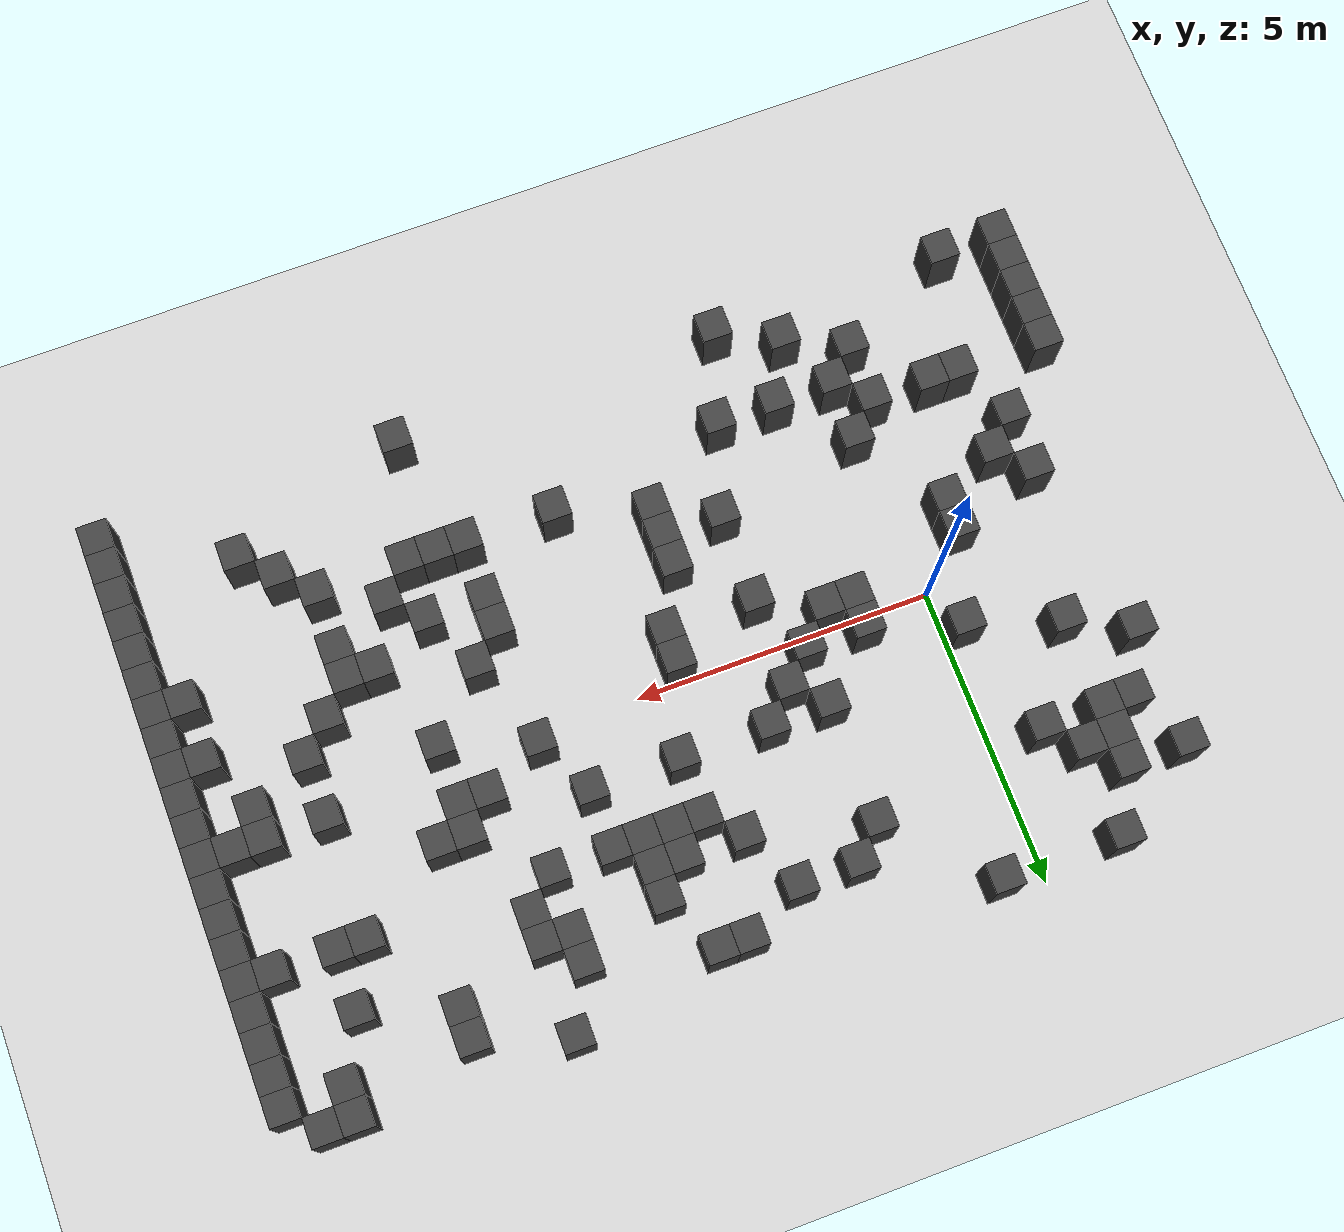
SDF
<sdf version="1.7">
 <world name="map_3891">
  <model name="ground_plane">
   <static>true</static>
   <link name="link">
    <collision name="collision">
     <geometry><plane><normal>0 0 1</normal><size>200 200</size></plane></geometry>
    </collision>
    <visual name="visual">
     <geometry><plane><normal>0 0 1</normal><size>200 200</size></plane></geometry>
     <material><ambient>0.8 0.8 0.8 1</ambient><diffuse>0.8 0.8 0.8 1</diffuse></material>
    </visual>
   </link>
  </model>
  <model name="maze_environment">
   <static>true</static>
   <link name="wall_222">
    <pose>-1.250 4.750 0.500 0 0 0</pose>
    <collision name="col"><geometry><box><size>0.5 0.5 1.0</size></box></geometry></collision>
    <visual name="vis">
     <geometry><box><size>0.5 0.5 1.0</size></box></geometry>
     <material><ambient>0.15 0.15 0.15 1</ambient><diffuse>0.25 0.25 0.25 1</diffuse></material>
    </visual>
   </link>
   <link name="wall_223">
    <pose>0.750 4.750 0.500 0 0 0</pose>
    <collision name="col"><geometry><box><size>0.5 0.5 1.0</size></box></geometry></collision>
    <visual name="vis">
     <geometry><box><size>0.5 0.5 1.0</size></box></geometry>
     <material><ambient>0.15 0.15 0.15 1</ambient><diffuse>0.25 0.25 0.25 1</diffuse></material>
    </visual>
   </link>
   <link name="wall_224">
    <pose>7.750 4.750 0.500 0 0 0</pose>
    <collision name="col"><geometry><box><size>0.5 0.5 1.0</size></box></geometry></collision>
    <visual name="vis">
     <geometry><box><size>0.5 0.5 1.0</size></box></geometry>
     <material><ambient>0.15 0.15 0.15 1</ambient><diffuse>0.25 0.25 0.25 1</diffuse></material>
    </visual>
   </link>
   <link name="wall_225">
    <pose>11.250 4.750 0.500 0 0 0</pose>
    <collision name="col"><geometry><box><size>0.5 0.5 1.0</size></box></geometry></collision>
    <visual name="vis">
     <geometry><box><size>0.5 0.5 1.0</size></box></geometry>
     <material><ambient>0.15 0.15 0.15 1</ambient><diffuse>0.25 0.25 0.25 1</diffuse></material>
    </visual>
   </link>
   <link name="wall_226">
    <pose>11.750 4.750 0.500 0 0 0</pose>
    <collision name="col"><geometry><box><size>0.5 0.5 1.0</size></box></geometry></collision>
    <visual name="vis">
     <geometry><box><size>0.5 0.5 1.0</size></box></geometry>
     <material><ambient>0.15 0.15 0.15 1</ambient><diffuse>0.25 0.25 0.25 1</diffuse></material>
    </visual>
   </link>
   <link name="wall_231">
    <pose>4.750 4.250 0.500 0 0 0</pose>
    <collision name="col"><geometry><box><size>0.5 0.5 1.0</size></box></geometry></collision>
    <visual name="vis">
     <geometry><box><size>0.5 0.5 1.0</size></box></geometry>
     <material><ambient>0.15 0.15 0.15 1</ambient><diffuse>0.25 0.25 0.25 1</diffuse></material>
    </visual>
   </link>
   <link name="wall_232">
    <pose>5.250 4.250 0.500 0 0 0</pose>
    <collision name="col"><geometry><box><size>0.5 0.5 1.0</size></box></geometry></collision>
    <visual name="vis">
     <geometry><box><size>0.5 0.5 1.0</size></box></geometry>
     <material><ambient>0.15 0.15 0.15 1</ambient><diffuse>0.25 0.25 0.25 1</diffuse></material>
    </visual>
   </link>
   <link name="wall_233">
    <pose>9.250 4.250 0.500 0 0 0</pose>
    <collision name="col"><geometry><box><size>0.5 0.5 1.0</size></box></geometry></collision>
    <visual name="vis">
     <geometry><box><size>0.5 0.5 1.0</size></box></geometry>
     <material><ambient>0.15 0.15 0.15 1</ambient><diffuse>0.25 0.25 0.25 1</diffuse></material>
    </visual>
   </link>
   <link name="wall_234">
    <pose>11.250 4.250 0.500 0 0 0</pose>
    <collision name="col"><geometry><box><size>0.5 0.5 1.0</size></box></geometry></collision>
    <visual name="vis">
     <geometry><box><size>0.5 0.5 1.0</size></box></geometry>
     <material><ambient>0.15 0.15 0.15 1</ambient><diffuse>0.25 0.25 0.25 1</diffuse></material>
    </visual>
   </link>
   <link name="wall_235">
    <pose>12.250 4.250 0.500 0 0 0</pose>
    <collision name="col"><geometry><box><size>0.5 0.5 1.0</size></box></geometry></collision>
    <visual name="vis">
     <geometry><box><size>0.5 0.5 1.0</size></box></geometry>
     <material><ambient>0.15 0.15 0.15 1</ambient><diffuse>0.25 0.25 0.25 1</diffuse></material>
    </visual>
   </link>
   <link name="wall_244">
    <pose>-2.750 3.750 0.500 0 0 0</pose>
    <collision name="col"><geometry><box><size>0.5 0.5 1.0</size></box></geometry></collision>
    <visual name="vis">
     <geometry><box><size>0.5 0.5 1.0</size></box></geometry>
     <material><ambient>0.15 0.15 0.15 1</ambient><diffuse>0.25 0.25 0.25 1</diffuse></material>
    </visual>
   </link>
   <link name="wall_245">
    <pose>-1.750 3.750 0.500 0 0 0</pose>
    <collision name="col"><geometry><box><size>0.5 0.5 1.0</size></box></geometry></collision>
    <visual name="vis">
     <geometry><box><size>0.5 0.5 1.0</size></box></geometry>
     <material><ambient>0.15 0.15 0.15 1</ambient><diffuse>0.25 0.25 0.25 1</diffuse></material>
    </visual>
   </link>
   <link name="wall_246">
    <pose>2.750 3.750 0.500 0 0 0</pose>
    <collision name="col"><geometry><box><size>0.5 0.5 1.0</size></box></geometry></collision>
    <visual name="vis">
     <geometry><box><size>0.5 0.5 1.0</size></box></geometry>
     <material><ambient>0.15 0.15 0.15 1</ambient><diffuse>0.25 0.25 0.25 1</diffuse></material>
    </visual>
   </link>
   <link name="wall_247">
    <pose>3.750 3.750 0.500 0 0 0</pose>
    <collision name="col"><geometry><box><size>0.5 0.5 1.0</size></box></geometry></collision>
    <visual name="vis">
     <geometry><box><size>0.5 0.5 1.0</size></box></geometry>
     <material><ambient>0.15 0.15 0.15 1</ambient><diffuse>0.25 0.25 0.25 1</diffuse></material>
    </visual>
   </link>
   <link name="wall_248">
    <pose>7.250 3.750 0.500 0 0 0</pose>
    <collision name="col"><geometry><box><size>0.5 0.5 1.0</size></box></geometry></collision>
    <visual name="vis">
     <geometry><box><size>0.5 0.5 1.0</size></box></geometry>
     <material><ambient>0.15 0.15 0.15 1</ambient><diffuse>0.25 0.25 0.25 1</diffuse></material>
    </visual>
   </link>
   <link name="wall_249">
    <pose>9.250 3.750 0.500 0 0 0</pose>
    <collision name="col"><geometry><box><size>0.5 0.5 1.0</size></box></geometry></collision>
    <visual name="vis">
     <geometry><box><size>0.5 0.5 1.0</size></box></geometry>
     <material><ambient>0.15 0.15 0.15 1</ambient><diffuse>0.25 0.25 0.25 1</diffuse></material>
    </visual>
   </link>
   <link name="wall_250">
    <pose>12.250 3.750 0.500 0 0 0</pose>
    <collision name="col"><geometry><box><size>0.5 0.5 1.0</size></box></geometry></collision>
    <visual name="vis">
     <geometry><box><size>0.5 0.5 1.0</size></box></geometry>
     <material><ambient>0.15 0.15 0.15 1</ambient><diffuse>0.25 0.25 0.25 1</diffuse></material>
    </visual>
   </link>
   <link name="wall_256">
    <pose>-1.750 3.250 0.500 0 0 0</pose>
    <collision name="col"><geometry><box><size>0.5 0.5 1.0</size></box></geometry></collision>
    <visual name="vis">
     <geometry><box><size>0.5 0.5 1.0</size></box></geometry>
     <material><ambient>0.15 0.15 0.15 1</ambient><diffuse>0.25 0.25 0.25 1</diffuse></material>
    </visual>
   </link>
   <link name="wall_257">
    <pose>-1.250 3.250 0.500 0 0 0</pose>
    <collision name="col"><geometry><box><size>0.5 0.5 1.0</size></box></geometry></collision>
    <visual name="vis">
     <geometry><box><size>0.5 0.5 1.0</size></box></geometry>
     <material><ambient>0.15 0.15 0.15 1</ambient><diffuse>0.25 0.25 0.25 1</diffuse></material>
    </visual>
   </link>
   <link name="wall_258">
    <pose>2.250 3.250 0.500 0 0 0</pose>
    <collision name="col"><geometry><box><size>0.5 0.5 1.0</size></box></geometry></collision>
    <visual name="vis">
     <geometry><box><size>0.5 0.5 1.0</size></box></geometry>
     <material><ambient>0.15 0.15 0.15 1</ambient><diffuse>0.25 0.25 0.25 1</diffuse></material>
    </visual>
   </link>
   <link name="wall_259">
    <pose>5.750 3.250 0.500 0 0 0</pose>
    <collision name="col"><geometry><box><size>0.5 0.5 1.0</size></box></geometry></collision>
    <visual name="vis">
     <geometry><box><size>0.5 0.5 1.0</size></box></geometry>
     <material><ambient>0.15 0.15 0.15 1</ambient><diffuse>0.25 0.25 0.25 1</diffuse></material>
    </visual>
   </link>
   <link name="wall_260">
    <pose>7.250 3.250 0.500 0 0 0</pose>
    <collision name="col"><geometry><box><size>0.5 0.5 1.0</size></box></geometry></collision>
    <visual name="vis">
     <geometry><box><size>0.5 0.5 1.0</size></box></geometry>
     <material><ambient>0.15 0.15 0.15 1</ambient><diffuse>0.25 0.25 0.25 1</diffuse></material>
    </visual>
   </link>
   <link name="wall_261">
    <pose>7.750 3.250 0.500 0 0 0</pose>
    <collision name="col"><geometry><box><size>0.5 0.5 1.0</size></box></geometry></collision>
    <visual name="vis">
     <geometry><box><size>0.5 0.5 1.0</size></box></geometry>
     <material><ambient>0.15 0.15 0.15 1</ambient><diffuse>0.25 0.25 0.25 1</diffuse></material>
    </visual>
   </link>
   <link name="wall_262">
    <pose>10.750 3.250 0.500 0 0 0</pose>
    <collision name="col"><geometry><box><size>0.5 0.5 1.0</size></box></geometry></collision>
    <visual name="vis">
     <geometry><box><size>0.5 0.5 1.0</size></box></geometry>
     <material><ambient>0.15 0.15 0.15 1</ambient><diffuse>0.25 0.25 0.25 1</diffuse></material>
    </visual>
   </link>
   <link name="wall_263">
    <pose>12.250 3.250 0.500 0 0 0</pose>
    <collision name="col"><geometry><box><size>0.5 0.5 1.0</size></box></geometry></collision>
    <visual name="vis">
     <geometry><box><size>0.5 0.5 1.0</size></box></geometry>
     <material><ambient>0.15 0.15 0.15 1</ambient><diffuse>0.25 0.25 0.25 1</diffuse></material>
    </visual>
   </link>
   <link name="wall_270">
    <pose>-2.250 2.750 0.500 0 0 0</pose>
    <collision name="col"><geometry><box><size>0.5 0.5 1.0</size></box></geometry></collision>
    <visual name="vis">
     <geometry><box><size>0.5 0.5 1.0</size></box></geometry>
     <material><ambient>0.15 0.15 0.15 1</ambient><diffuse>0.25 0.25 0.25 1</diffuse></material>
    </visual>
   </link>
   <link name="wall_271">
    <pose>-1.750 2.750 0.500 0 0 0</pose>
    <collision name="col"><geometry><box><size>0.5 0.5 1.0</size></box></geometry></collision>
    <visual name="vis">
     <geometry><box><size>0.5 0.5 1.0</size></box></geometry>
     <material><ambient>0.15 0.15 0.15 1</ambient><diffuse>0.25 0.25 0.25 1</diffuse></material>
    </visual>
   </link>
   <link name="wall_272">
    <pose>-0.750 2.750 0.500 0 0 0</pose>
    <collision name="col"><geometry><box><size>0.5 0.5 1.0</size></box></geometry></collision>
    <visual name="vis">
     <geometry><box><size>0.5 0.5 1.0</size></box></geometry>
     <material><ambient>0.15 0.15 0.15 1</ambient><diffuse>0.25 0.25 0.25 1</diffuse></material>
    </visual>
   </link>
   <link name="wall_273">
    <pose>4.250 2.750 0.500 0 0 0</pose>
    <collision name="col"><geometry><box><size>0.5 0.5 1.0</size></box></geometry></collision>
    <visual name="vis">
     <geometry><box><size>0.5 0.5 1.0</size></box></geometry>
     <material><ambient>0.15 0.15 0.15 1</ambient><diffuse>0.25 0.25 0.25 1</diffuse></material>
    </visual>
   </link>
   <link name="wall_274">
    <pose>5.250 2.750 0.500 0 0 0</pose>
    <collision name="col"><geometry><box><size>0.5 0.5 1.0</size></box></geometry></collision>
    <visual name="vis">
     <geometry><box><size>0.5 0.5 1.0</size></box></geometry>
     <material><ambient>0.15 0.15 0.15 1</ambient><diffuse>0.25 0.25 0.25 1</diffuse></material>
    </visual>
   </link>
   <link name="wall_275">
    <pose>5.750 2.750 0.500 0 0 0</pose>
    <collision name="col"><geometry><box><size>0.5 0.5 1.0</size></box></geometry></collision>
    <visual name="vis">
     <geometry><box><size>0.5 0.5 1.0</size></box></geometry>
     <material><ambient>0.15 0.15 0.15 1</ambient><diffuse>0.25 0.25 0.25 1</diffuse></material>
    </visual>
   </link>
   <link name="wall_276">
    <pose>7.750 2.750 0.500 0 0 0</pose>
    <collision name="col"><geometry><box><size>0.5 0.5 1.0</size></box></geometry></collision>
    <visual name="vis">
     <geometry><box><size>0.5 0.5 1.0</size></box></geometry>
     <material><ambient>0.15 0.15 0.15 1</ambient><diffuse>0.25 0.25 0.25 1</diffuse></material>
    </visual>
   </link>
   <link name="wall_277">
    <pose>12.250 2.750 0.500 0 0 0</pose>
    <collision name="col"><geometry><box><size>0.5 0.5 1.0</size></box></geometry></collision>
    <visual name="vis">
     <geometry><box><size>0.5 0.5 1.0</size></box></geometry>
     <material><ambient>0.15 0.15 0.15 1</ambient><diffuse>0.25 0.25 0.25 1</diffuse></material>
    </visual>
   </link>
   <link name="wall_280">
    <pose>4.750 2.250 0.500 0 0 0</pose>
    <collision name="col"><geometry><box><size>0.5 0.5 1.0</size></box></geometry></collision>
    <visual name="vis">
     <geometry><box><size>0.5 0.5 1.0</size></box></geometry>
     <material><ambient>0.15 0.15 0.15 1</ambient><diffuse>0.25 0.25 0.25 1</diffuse></material>
    </visual>
   </link>
   <link name="wall_281">
    <pose>5.250 2.250 0.500 0 0 0</pose>
    <collision name="col"><geometry><box><size>0.5 0.5 1.0</size></box></geometry></collision>
    <visual name="vis">
     <geometry><box><size>0.5 0.5 1.0</size></box></geometry>
     <material><ambient>0.15 0.15 0.15 1</ambient><diffuse>0.25 0.25 0.25 1</diffuse></material>
    </visual>
   </link>
   <link name="wall_282">
    <pose>5.750 2.250 0.500 0 0 0</pose>
    <collision name="col"><geometry><box><size>0.5 0.5 1.0</size></box></geometry></collision>
    <visual name="vis">
     <geometry><box><size>0.5 0.5 1.0</size></box></geometry>
     <material><ambient>0.15 0.15 0.15 1</ambient><diffuse>0.25 0.25 0.25 1</diffuse></material>
    </visual>
   </link>
   <link name="wall_283">
    <pose>6.250 2.250 0.500 0 0 0</pose>
    <collision name="col"><geometry><box><size>0.5 0.5 1.0</size></box></geometry></collision>
    <visual name="vis">
     <geometry><box><size>0.5 0.5 1.0</size></box></geometry>
     <material><ambient>0.15 0.15 0.15 1</ambient><diffuse>0.25 0.25 0.25 1</diffuse></material>
    </visual>
   </link>
   <link name="wall_284">
    <pose>7.250 2.250 0.500 0 0 0</pose>
    <collision name="col"><geometry><box><size>0.5 0.5 1.0</size></box></geometry></collision>
    <visual name="vis">
     <geometry><box><size>0.5 0.5 1.0</size></box></geometry>
     <material><ambient>0.15 0.15 0.15 1</ambient><diffuse>0.25 0.25 0.25 1</diffuse></material>
    </visual>
   </link>
   <link name="wall_285">
    <pose>10.250 2.250 0.500 0 0 0</pose>
    <collision name="col"><geometry><box><size>0.5 0.5 1.0</size></box></geometry></collision>
    <visual name="vis">
     <geometry><box><size>0.5 0.5 1.0</size></box></geometry>
     <material><ambient>0.15 0.15 0.15 1</ambient><diffuse>0.25 0.25 0.25 1</diffuse></material>
    </visual>
   </link>
   <link name="wall_286">
    <pose>10.750 2.250 0.500 0 0 0</pose>
    <collision name="col"><geometry><box><size>0.5 0.5 1.0</size></box></geometry></collision>
    <visual name="vis">
     <geometry><box><size>0.5 0.5 1.0</size></box></geometry>
     <material><ambient>0.15 0.15 0.15 1</ambient><diffuse>0.25 0.25 0.25 1</diffuse></material>
    </visual>
   </link>
   <link name="wall_287">
    <pose>11.750 2.250 0.500 0 0 0</pose>
    <collision name="col"><geometry><box><size>0.5 0.5 1.0</size></box></geometry></collision>
    <visual name="vis">
     <geometry><box><size>0.5 0.5 1.0</size></box></geometry>
     <material><ambient>0.15 0.15 0.15 1</ambient><diffuse>0.25 0.25 0.25 1</diffuse></material>
    </visual>
   </link>
   <link name="wall_288">
    <pose>12.250 2.250 0.500 0 0 0</pose>
    <collision name="col"><geometry><box><size>0.5 0.5 1.0</size></box></geometry></collision>
    <visual name="vis">
     <geometry><box><size>0.5 0.5 1.0</size></box></geometry>
     <material><ambient>0.15 0.15 0.15 1</ambient><diffuse>0.25 0.25 0.25 1</diffuse></material>
    </visual>
   </link>
   <link name="wall_294">
    <pose>-2.750 1.750 0.500 0 0 0</pose>
    <collision name="col"><geometry><box><size>0.5 0.5 1.0</size></box></geometry></collision>
    <visual name="vis">
     <geometry><box><size>0.5 0.5 1.0</size></box></geometry>
     <material><ambient>0.15 0.15 0.15 1</ambient><diffuse>0.25 0.25 0.25 1</diffuse></material>
    </visual>
   </link>
   <link name="wall_295">
    <pose>12.250 1.750 0.500 0 0 0</pose>
    <collision name="col"><geometry><box><size>0.5 0.5 1.0</size></box></geometry></collision>
    <visual name="vis">
     <geometry><box><size>0.5 0.5 1.0</size></box></geometry>
     <material><ambient>0.15 0.15 0.15 1</ambient><diffuse>0.25 0.25 0.25 1</diffuse></material>
    </visual>
   </link>
   <link name="wall_304">
    <pose>-1.750 1.250 0.500 0 0 0</pose>
    <collision name="col"><geometry><box><size>0.5 0.5 1.0</size></box></geometry></collision>
    <visual name="vis">
     <geometry><box><size>0.5 0.5 1.0</size></box></geometry>
     <material><ambient>0.15 0.15 0.15 1</ambient><diffuse>0.25 0.25 0.25 1</diffuse></material>
    </visual>
   </link>
   <link name="wall_305">
    <pose>2.250 1.250 0.500 0 0 0</pose>
    <collision name="col"><geometry><box><size>0.5 0.5 1.0</size></box></geometry></collision>
    <visual name="vis">
     <geometry><box><size>0.5 0.5 1.0</size></box></geometry>
     <material><ambient>0.15 0.15 0.15 1</ambient><diffuse>0.25 0.25 0.25 1</diffuse></material>
    </visual>
   </link>
   <link name="wall_306">
    <pose>3.250 1.250 0.500 0 0 0</pose>
    <collision name="col"><geometry><box><size>0.5 0.5 1.0</size></box></geometry></collision>
    <visual name="vis">
     <geometry><box><size>0.5 0.5 1.0</size></box></geometry>
     <material><ambient>0.15 0.15 0.15 1</ambient><diffuse>0.25 0.25 0.25 1</diffuse></material>
    </visual>
   </link>
   <link name="wall_307">
    <pose>4.750 1.250 0.500 0 0 0</pose>
    <collision name="col"><geometry><box><size>0.5 0.5 1.0</size></box></geometry></collision>
    <visual name="vis">
     <geometry><box><size>0.5 0.5 1.0</size></box></geometry>
     <material><ambient>0.15 0.15 0.15 1</ambient><diffuse>0.25 0.25 0.25 1</diffuse></material>
    </visual>
   </link>
   <link name="wall_308">
    <pose>6.250 1.250 0.500 0 0 0</pose>
    <collision name="col"><geometry><box><size>0.5 0.5 1.0</size></box></geometry></collision>
    <visual name="vis">
     <geometry><box><size>0.5 0.5 1.0</size></box></geometry>
     <material><ambient>0.15 0.15 0.15 1</ambient><diffuse>0.25 0.25 0.25 1</diffuse></material>
    </visual>
   </link>
   <link name="wall_309">
    <pose>8.250 1.250 0.500 0 0 0</pose>
    <collision name="col"><geometry><box><size>0.5 0.5 1.0</size></box></geometry></collision>
    <visual name="vis">
     <geometry><box><size>0.5 0.5 1.0</size></box></geometry>
     <material><ambient>0.15 0.15 0.15 1</ambient><diffuse>0.25 0.25 0.25 1</diffuse></material>
    </visual>
   </link>
   <link name="wall_310">
    <pose>8.750 1.250 0.500 0 0 0</pose>
    <collision name="col"><geometry><box><size>0.5 0.5 1.0</size></box></geometry></collision>
    <visual name="vis">
     <geometry><box><size>0.5 0.5 1.0</size></box></geometry>
     <material><ambient>0.15 0.15 0.15 1</ambient><diffuse>0.25 0.25 0.25 1</diffuse></material>
    </visual>
   </link>
   <link name="wall_311">
    <pose>12.250 1.250 0.500 0 0 0</pose>
    <collision name="col"><geometry><box><size>0.5 0.5 1.0</size></box></geometry></collision>
    <visual name="vis">
     <geometry><box><size>0.5 0.5 1.0</size></box></geometry>
     <material><ambient>0.15 0.15 0.15 1</ambient><diffuse>0.25 0.25 0.25 1</diffuse></material>
    </visual>
   </link>
   <link name="wall_319">
    <pose>-0.250 0.750 0.500 0 0 0</pose>
    <collision name="col"><geometry><box><size>0.5 0.5 1.0</size></box></geometry></collision>
    <visual name="vis">
     <geometry><box><size>0.5 0.5 1.0</size></box></geometry>
     <material><ambient>0.15 0.15 0.15 1</ambient><diffuse>0.25 0.25 0.25 1</diffuse></material>
    </visual>
   </link>
   <link name="wall_320">
    <pose>2.750 0.750 0.500 0 0 0</pose>
    <collision name="col"><geometry><box><size>0.5 0.5 1.0</size></box></geometry></collision>
    <visual name="vis">
     <geometry><box><size>0.5 0.5 1.0</size></box></geometry>
     <material><ambient>0.15 0.15 0.15 1</ambient><diffuse>0.25 0.25 0.25 1</diffuse></material>
    </visual>
   </link>
   <link name="wall_321">
    <pose>7.750 0.750 0.500 0 0 0</pose>
    <collision name="col"><geometry><box><size>0.5 0.5 1.0</size></box></geometry></collision>
    <visual name="vis">
     <geometry><box><size>0.5 0.5 1.0</size></box></geometry>
     <material><ambient>0.15 0.15 0.15 1</ambient><diffuse>0.25 0.25 0.25 1</diffuse></material>
    </visual>
   </link>
   <link name="wall_322">
    <pose>8.250 0.750 0.500 0 0 0</pose>
    <collision name="col"><geometry><box><size>0.5 0.5 1.0</size></box></geometry></collision>
    <visual name="vis">
     <geometry><box><size>0.5 0.5 1.0</size></box></geometry>
     <material><ambient>0.15 0.15 0.15 1</ambient><diffuse>0.25 0.25 0.25 1</diffuse></material>
    </visual>
   </link>
   <link name="wall_323">
    <pose>12.250 0.750 0.500 0 0 0</pose>
    <collision name="col"><geometry><box><size>0.5 0.5 1.0</size></box></geometry></collision>
    <visual name="vis">
     <geometry><box><size>0.5 0.5 1.0</size></box></geometry>
     <material><ambient>0.15 0.15 0.15 1</ambient><diffuse>0.25 0.25 0.25 1</diffuse></material>
    </visual>
   </link>
   <link name="wall_329">
    <pose>1.250 0.250 0.500 0 0 0</pose>
    <collision name="col"><geometry><box><size>0.5 0.5 1.0</size></box></geometry></collision>
    <visual name="vis">
     <geometry><box><size>0.5 0.5 1.0</size></box></geometry>
     <material><ambient>0.15 0.15 0.15 1</ambient><diffuse>0.25 0.25 0.25 1</diffuse></material>
    </visual>
   </link>
   <link name="wall_330">
    <pose>2.250 0.250 0.500 0 0 0</pose>
    <collision name="col"><geometry><box><size>0.5 0.5 1.0</size></box></geometry></collision>
    <visual name="vis">
     <geometry><box><size>0.5 0.5 1.0</size></box></geometry>
     <material><ambient>0.15 0.15 0.15 1</ambient><diffuse>0.25 0.25 0.25 1</diffuse></material>
    </visual>
   </link>
   <link name="wall_331">
    <pose>6.750 0.250 0.500 0 0 0</pose>
    <collision name="col"><geometry><box><size>0.5 0.5 1.0</size></box></geometry></collision>
    <visual name="vis">
     <geometry><box><size>0.5 0.5 1.0</size></box></geometry>
     <material><ambient>0.15 0.15 0.15 1</ambient><diffuse>0.25 0.25 0.25 1</diffuse></material>
    </visual>
   </link>
   <link name="wall_332">
    <pose>10.250 0.250 0.500 0 0 0</pose>
    <collision name="col"><geometry><box><size>0.5 0.5 1.0</size></box></geometry></collision>
    <visual name="vis">
     <geometry><box><size>0.5 0.5 1.0</size></box></geometry>
     <material><ambient>0.15 0.15 0.15 1</ambient><diffuse>0.25 0.25 0.25 1</diffuse></material>
    </visual>
   </link>
   <link name="wall_333">
    <pose>11.250 0.250 0.500 0 0 0</pose>
    <collision name="col"><geometry><box><size>0.5 0.5 1.0</size></box></geometry></collision>
    <visual name="vis">
     <geometry><box><size>0.5 0.5 1.0</size></box></geometry>
     <material><ambient>0.15 0.15 0.15 1</ambient><diffuse>0.25 0.25 0.25 1</diffuse></material>
    </visual>
   </link>
   <link name="wall_334">
    <pose>11.750 0.250 0.500 0 0 0</pose>
    <collision name="col"><geometry><box><size>0.5 0.5 1.0</size></box></geometry></collision>
    <visual name="vis">
     <geometry><box><size>0.5 0.5 1.0</size></box></geometry>
     <material><ambient>0.15 0.15 0.15 1</ambient><diffuse>0.25 0.25 0.25 1</diffuse></material>
    </visual>
   </link>
   <link name="wall_335">
    <pose>12.250 0.250 0.500 0 0 0</pose>
    <collision name="col"><geometry><box><size>0.5 0.5 1.0</size></box></geometry></collision>
    <visual name="vis">
     <geometry><box><size>0.5 0.5 1.0</size></box></geometry>
     <material><ambient>0.15 0.15 0.15 1</ambient><diffuse>0.25 0.25 0.25 1</diffuse></material>
    </visual>
   </link>
   <link name="wall_339">
    <pose>1.250 -0.250 0.500 0 0 0</pose>
    <collision name="col"><geometry><box><size>0.5 0.5 1.0</size></box></geometry></collision>
    <visual name="vis">
     <geometry><box><size>0.5 0.5 1.0</size></box></geometry>
     <material><ambient>0.15 0.15 0.15 1</ambient><diffuse>0.25 0.25 0.25 1</diffuse></material>
    </visual>
   </link>
   <link name="wall_340">
    <pose>1.750 -0.250 0.500 0 0 0</pose>
    <collision name="col"><geometry><box><size>0.5 0.5 1.0</size></box></geometry></collision>
    <visual name="vis">
     <geometry><box><size>0.5 0.5 1.0</size></box></geometry>
     <material><ambient>0.15 0.15 0.15 1</ambient><diffuse>0.25 0.25 0.25 1</diffuse></material>
    </visual>
   </link>
   <link name="wall_341">
    <pose>4.250 -0.250 0.500 0 0 0</pose>
    <collision name="col"><geometry><box><size>0.5 0.5 1.0</size></box></geometry></collision>
    <visual name="vis">
     <geometry><box><size>0.5 0.5 1.0</size></box></geometry>
     <material><ambient>0.15 0.15 0.15 1</ambient><diffuse>0.25 0.25 0.25 1</diffuse></material>
    </visual>
   </link>
   <link name="wall_342">
    <pose>8.250 -0.250 0.500 0 0 0</pose>
    <collision name="col"><geometry><box><size>0.5 0.5 1.0</size></box></geometry></collision>
    <visual name="vis">
     <geometry><box><size>0.5 0.5 1.0</size></box></geometry>
     <material><ambient>0.15 0.15 0.15 1</ambient><diffuse>0.25 0.25 0.25 1</diffuse></material>
    </visual>
   </link>
   <link name="wall_343">
    <pose>11.250 -0.250 0.500 0 0 0</pose>
    <collision name="col"><geometry><box><size>0.5 0.5 1.0</size></box></geometry></collision>
    <visual name="vis">
     <geometry><box><size>0.5 0.5 1.0</size></box></geometry>
     <material><ambient>0.15 0.15 0.15 1</ambient><diffuse>0.25 0.25 0.25 1</diffuse></material>
    </visual>
   </link>
   <link name="wall_344">
    <pose>12.250 -0.250 0.500 0 0 0</pose>
    <collision name="col"><geometry><box><size>0.5 0.5 1.0</size></box></geometry></collision>
    <visual name="vis">
     <geometry><box><size>0.5 0.5 1.0</size></box></geometry>
     <material><ambient>0.15 0.15 0.15 1</ambient><diffuse>0.25 0.25 0.25 1</diffuse></material>
    </visual>
   </link>
   <link name="wall_349">
    <pose>-0.750 -0.750 0.500 0 0 0</pose>
    <collision name="col"><geometry><box><size>0.5 0.5 1.0</size></box></geometry></collision>
    <visual name="vis">
     <geometry><box><size>0.5 0.5 1.0</size></box></geometry>
     <material><ambient>0.15 0.15 0.15 1</ambient><diffuse>0.25 0.25 0.25 1</diffuse></material>
    </visual>
   </link>
   <link name="wall_350">
    <pose>2.750 -0.750 0.500 0 0 0</pose>
    <collision name="col"><geometry><box><size>0.5 0.5 1.0</size></box></geometry></collision>
    <visual name="vis">
     <geometry><box><size>0.5 0.5 1.0</size></box></geometry>
     <material><ambient>0.15 0.15 0.15 1</ambient><diffuse>0.25 0.25 0.25 1</diffuse></material>
    </visual>
   </link>
   <link name="wall_351">
    <pose>4.250 -0.750 0.500 0 0 0</pose>
    <collision name="col"><geometry><box><size>0.5 0.5 1.0</size></box></geometry></collision>
    <visual name="vis">
     <geometry><box><size>0.5 0.5 1.0</size></box></geometry>
     <material><ambient>0.15 0.15 0.15 1</ambient><diffuse>0.25 0.25 0.25 1</diffuse></material>
    </visual>
   </link>
   <link name="wall_352">
    <pose>10.250 -0.750 0.500 0 0 0</pose>
    <collision name="col"><geometry><box><size>0.5 0.5 1.0</size></box></geometry></collision>
    <visual name="vis">
     <geometry><box><size>0.5 0.5 1.0</size></box></geometry>
     <material><ambient>0.15 0.15 0.15 1</ambient><diffuse>0.25 0.25 0.25 1</diffuse></material>
    </visual>
   </link>
   <link name="wall_353">
    <pose>12.250 -0.750 0.500 0 0 0</pose>
    <collision name="col"><geometry><box><size>0.5 0.5 1.0</size></box></geometry></collision>
    <visual name="vis">
     <geometry><box><size>0.5 0.5 1.0</size></box></geometry>
     <material><ambient>0.15 0.15 0.15 1</ambient><diffuse>0.25 0.25 0.25 1</diffuse></material>
    </visual>
   </link>
   <link name="wall_358">
    <pose>-2.250 -1.250 0.500 0 0 0</pose>
    <collision name="col"><geometry><box><size>0.5 0.5 1.0</size></box></geometry></collision>
    <visual name="vis">
     <geometry><box><size>0.5 0.5 1.0</size></box></geometry>
     <material><ambient>0.15 0.15 0.15 1</ambient><diffuse>0.25 0.25 0.25 1</diffuse></material>
    </visual>
   </link>
   <link name="wall_359">
    <pose>-0.750 -1.250 0.500 0 0 0</pose>
    <collision name="col"><geometry><box><size>0.5 0.5 1.0</size></box></geometry></collision>
    <visual name="vis">
     <geometry><box><size>0.5 0.5 1.0</size></box></geometry>
     <material><ambient>0.15 0.15 0.15 1</ambient><diffuse>0.25 0.25 0.25 1</diffuse></material>
    </visual>
   </link>
   <link name="wall_360">
    <pose>7.250 -1.250 0.500 0 0 0</pose>
    <collision name="col"><geometry><box><size>0.5 0.5 1.0</size></box></geometry></collision>
    <visual name="vis">
     <geometry><box><size>0.5 0.5 1.0</size></box></geometry>
     <material><ambient>0.15 0.15 0.15 1</ambient><diffuse>0.25 0.25 0.25 1</diffuse></material>
    </visual>
   </link>
   <link name="wall_361">
    <pose>9.750 -1.250 0.500 0 0 0</pose>
    <collision name="col"><geometry><box><size>0.5 0.5 1.0</size></box></geometry></collision>
    <visual name="vis">
     <geometry><box><size>0.5 0.5 1.0</size></box></geometry>
     <material><ambient>0.15 0.15 0.15 1</ambient><diffuse>0.25 0.25 0.25 1</diffuse></material>
    </visual>
   </link>
   <link name="wall_362">
    <pose>11.750 -1.250 0.500 0 0 0</pose>
    <collision name="col"><geometry><box><size>0.5 0.5 1.0</size></box></geometry></collision>
    <visual name="vis">
     <geometry><box><size>0.5 0.5 1.0</size></box></geometry>
     <material><ambient>0.15 0.15 0.15 1</ambient><diffuse>0.25 0.25 0.25 1</diffuse></material>
    </visual>
   </link>
   <link name="wall_363">
    <pose>12.250 -1.250 0.500 0 0 0</pose>
    <collision name="col"><geometry><box><size>0.5 0.5 1.0</size></box></geometry></collision>
    <visual name="vis">
     <geometry><box><size>0.5 0.5 1.0</size></box></geometry>
     <material><ambient>0.15 0.15 0.15 1</ambient><diffuse>0.25 0.25 0.25 1</diffuse></material>
    </visual>
   </link>
   <link name="wall_369">
    <pose>-1.750 -1.750 0.500 0 0 0</pose>
    <collision name="col"><geometry><box><size>0.5 0.5 1.0</size></box></geometry></collision>
    <visual name="vis">
     <geometry><box><size>0.5 0.5 1.0</size></box></geometry>
     <material><ambient>0.15 0.15 0.15 1</ambient><diffuse>0.25 0.25 0.25 1</diffuse></material>
    </visual>
   </link>
   <link name="wall_370">
    <pose>3.750 -1.750 0.500 0 0 0</pose>
    <collision name="col"><geometry><box><size>0.5 0.5 1.0</size></box></geometry></collision>
    <visual name="vis">
     <geometry><box><size>0.5 0.5 1.0</size></box></geometry>
     <material><ambient>0.15 0.15 0.15 1</ambient><diffuse>0.25 0.25 0.25 1</diffuse></material>
    </visual>
   </link>
   <link name="wall_371">
    <pose>6.750 -1.750 0.500 0 0 0</pose>
    <collision name="col"><geometry><box><size>0.5 0.5 1.0</size></box></geometry></collision>
    <visual name="vis">
     <geometry><box><size>0.5 0.5 1.0</size></box></geometry>
     <material><ambient>0.15 0.15 0.15 1</ambient><diffuse>0.25 0.25 0.25 1</diffuse></material>
    </visual>
   </link>
   <link name="wall_372">
    <pose>8.750 -1.750 0.500 0 0 0</pose>
    <collision name="col"><geometry><box><size>0.5 0.5 1.0</size></box></geometry></collision>
    <visual name="vis">
     <geometry><box><size>0.5 0.5 1.0</size></box></geometry>
     <material><ambient>0.15 0.15 0.15 1</ambient><diffuse>0.25 0.25 0.25 1</diffuse></material>
    </visual>
   </link>
   <link name="wall_373">
    <pose>9.250 -1.750 0.500 0 0 0</pose>
    <collision name="col"><geometry><box><size>0.5 0.5 1.0</size></box></geometry></collision>
    <visual name="vis">
     <geometry><box><size>0.5 0.5 1.0</size></box></geometry>
     <material><ambient>0.15 0.15 0.15 1</ambient><diffuse>0.25 0.25 0.25 1</diffuse></material>
    </visual>
   </link>
   <link name="wall_374">
    <pose>12.250 -1.750 0.500 0 0 0</pose>
    <collision name="col"><geometry><box><size>0.5 0.5 1.0</size></box></geometry></collision>
    <visual name="vis">
     <geometry><box><size>0.5 0.5 1.0</size></box></geometry>
     <material><ambient>0.15 0.15 0.15 1</ambient><diffuse>0.25 0.25 0.25 1</diffuse></material>
    </visual>
   </link>
   <link name="wall_378">
    <pose>-2.250 -2.250 0.500 0 0 0</pose>
    <collision name="col"><geometry><box><size>0.5 0.5 1.0</size></box></geometry></collision>
    <visual name="vis">
     <geometry><box><size>0.5 0.5 1.0</size></box></geometry>
     <material><ambient>0.15 0.15 0.15 1</ambient><diffuse>0.25 0.25 0.25 1</diffuse></material>
    </visual>
   </link>
   <link name="wall_379">
    <pose>2.750 -2.250 0.500 0 0 0</pose>
    <collision name="col"><geometry><box><size>0.5 0.5 1.0</size></box></geometry></collision>
    <visual name="vis">
     <geometry><box><size>0.5 0.5 1.0</size></box></geometry>
     <material><ambient>0.15 0.15 0.15 1</ambient><diffuse>0.25 0.25 0.25 1</diffuse></material>
    </visual>
   </link>
   <link name="wall_380">
    <pose>3.750 -2.250 0.500 0 0 0</pose>
    <collision name="col"><geometry><box><size>0.5 0.5 1.0</size></box></geometry></collision>
    <visual name="vis">
     <geometry><box><size>0.5 0.5 1.0</size></box></geometry>
     <material><ambient>0.15 0.15 0.15 1</ambient><diffuse>0.25 0.25 0.25 1</diffuse></material>
    </visual>
   </link>
   <link name="wall_381">
    <pose>6.750 -2.250 0.500 0 0 0</pose>
    <collision name="col"><geometry><box><size>0.5 0.5 1.0</size></box></geometry></collision>
    <visual name="vis">
     <geometry><box><size>0.5 0.5 1.0</size></box></geometry>
     <material><ambient>0.15 0.15 0.15 1</ambient><diffuse>0.25 0.25 0.25 1</diffuse></material>
    </visual>
   </link>
   <link name="wall_382">
    <pose>7.750 -2.250 0.500 0 0 0</pose>
    <collision name="col"><geometry><box><size>0.5 0.5 1.0</size></box></geometry></collision>
    <visual name="vis">
     <geometry><box><size>0.5 0.5 1.0</size></box></geometry>
     <material><ambient>0.15 0.15 0.15 1</ambient><diffuse>0.25 0.25 0.25 1</diffuse></material>
    </visual>
   </link>
   <link name="wall_383">
    <pose>9.250 -2.250 0.500 0 0 0</pose>
    <collision name="col"><geometry><box><size>0.5 0.5 1.0</size></box></geometry></collision>
    <visual name="vis">
     <geometry><box><size>0.5 0.5 1.0</size></box></geometry>
     <material><ambient>0.15 0.15 0.15 1</ambient><diffuse>0.25 0.25 0.25 1</diffuse></material>
    </visual>
   </link>
   <link name="wall_384">
    <pose>11.750 -2.250 0.500 0 0 0</pose>
    <collision name="col"><geometry><box><size>0.5 0.5 1.0</size></box></geometry></collision>
    <visual name="vis">
     <geometry><box><size>0.5 0.5 1.0</size></box></geometry>
     <material><ambient>0.15 0.15 0.15 1</ambient><diffuse>0.25 0.25 0.25 1</diffuse></material>
    </visual>
   </link>
   <link name="wall_385">
    <pose>12.250 -2.250 0.500 0 0 0</pose>
    <collision name="col"><geometry><box><size>0.5 0.5 1.0</size></box></geometry></collision>
    <visual name="vis">
     <geometry><box><size>0.5 0.5 1.0</size></box></geometry>
     <material><ambient>0.15 0.15 0.15 1</ambient><diffuse>0.25 0.25 0.25 1</diffuse></material>
    </visual>
   </link>
   <link name="wall_391">
    <pose>0.250 -2.750 0.500 0 0 0</pose>
    <collision name="col"><geometry><box><size>0.5 0.5 1.0</size></box></geometry></collision>
    <visual name="vis">
     <geometry><box><size>0.5 0.5 1.0</size></box></geometry>
     <material><ambient>0.15 0.15 0.15 1</ambient><diffuse>0.25 0.25 0.25 1</diffuse></material>
    </visual>
   </link>
   <link name="wall_392">
    <pose>3.750 -2.750 0.500 0 0 0</pose>
    <collision name="col"><geometry><box><size>0.5 0.5 1.0</size></box></geometry></collision>
    <visual name="vis">
     <geometry><box><size>0.5 0.5 1.0</size></box></geometry>
     <material><ambient>0.15 0.15 0.15 1</ambient><diffuse>0.25 0.25 0.25 1</diffuse></material>
    </visual>
   </link>
   <link name="wall_393">
    <pose>8.250 -2.750 0.500 0 0 0</pose>
    <collision name="col"><geometry><box><size>0.5 0.5 1.0</size></box></geometry></collision>
    <visual name="vis">
     <geometry><box><size>0.5 0.5 1.0</size></box></geometry>
     <material><ambient>0.15 0.15 0.15 1</ambient><diffuse>0.25 0.25 0.25 1</diffuse></material>
    </visual>
   </link>
   <link name="wall_394">
    <pose>12.250 -2.750 0.500 0 0 0</pose>
    <collision name="col"><geometry><box><size>0.5 0.5 1.0</size></box></geometry></collision>
    <visual name="vis">
     <geometry><box><size>0.5 0.5 1.0</size></box></geometry>
     <material><ambient>0.15 0.15 0.15 1</ambient><diffuse>0.25 0.25 0.25 1</diffuse></material>
    </visual>
   </link>
   <link name="wall_397">
    <pose>-3.250 -3.250 0.500 0 0 0</pose>
    <collision name="col"><geometry><box><size>0.5 0.5 1.0</size></box></geometry></collision>
    <visual name="vis">
     <geometry><box><size>0.5 0.5 1.0</size></box></geometry>
     <material><ambient>0.15 0.15 0.15 1</ambient><diffuse>0.25 0.25 0.25 1</diffuse></material>
    </visual>
   </link>
   <link name="wall_398">
    <pose>-1.750 -3.250 0.500 0 0 0</pose>
    <collision name="col"><geometry><box><size>0.5 0.5 1.0</size></box></geometry></collision>
    <visual name="vis">
     <geometry><box><size>0.5 0.5 1.0</size></box></geometry>
     <material><ambient>0.15 0.15 0.15 1</ambient><diffuse>0.25 0.25 0.25 1</diffuse></material>
    </visual>
   </link>
   <link name="wall_399">
    <pose>-1.250 -3.250 0.500 0 0 0</pose>
    <collision name="col"><geometry><box><size>0.5 0.5 1.0</size></box></geometry></collision>
    <visual name="vis">
     <geometry><box><size>0.5 0.5 1.0</size></box></geometry>
     <material><ambient>0.15 0.15 0.15 1</ambient><diffuse>0.25 0.25 0.25 1</diffuse></material>
    </visual>
   </link>
   <link name="wall_400">
    <pose>-0.250 -3.250 0.500 0 0 0</pose>
    <collision name="col"><geometry><box><size>0.5 0.5 1.0</size></box></geometry></collision>
    <visual name="vis">
     <geometry><box><size>0.5 0.5 1.0</size></box></geometry>
     <material><ambient>0.15 0.15 0.15 1</ambient><diffuse>0.25 0.25 0.25 1</diffuse></material>
    </visual>
   </link>
   <link name="wall_401">
    <pose>5.250 -3.250 0.500 0 0 0</pose>
    <collision name="col"><geometry><box><size>0.5 0.5 1.0</size></box></geometry></collision>
    <visual name="vis">
     <geometry><box><size>0.5 0.5 1.0</size></box></geometry>
     <material><ambient>0.15 0.15 0.15 1</ambient><diffuse>0.25 0.25 0.25 1</diffuse></material>
    </visual>
   </link>
   <link name="wall_402">
    <pose>6.750 -3.250 0.500 0 0 0</pose>
    <collision name="col"><geometry><box><size>0.5 0.5 1.0</size></box></geometry></collision>
    <visual name="vis">
     <geometry><box><size>0.5 0.5 1.0</size></box></geometry>
     <material><ambient>0.15 0.15 0.15 1</ambient><diffuse>0.25 0.25 0.25 1</diffuse></material>
    </visual>
   </link>
   <link name="wall_403">
    <pose>7.250 -3.250 0.500 0 0 0</pose>
    <collision name="col"><geometry><box><size>0.5 0.5 1.0</size></box></geometry></collision>
    <visual name="vis">
     <geometry><box><size>0.5 0.5 1.0</size></box></geometry>
     <material><ambient>0.15 0.15 0.15 1</ambient><diffuse>0.25 0.25 0.25 1</diffuse></material>
    </visual>
   </link>
   <link name="wall_404">
    <pose>7.750 -3.250 0.500 0 0 0</pose>
    <collision name="col"><geometry><box><size>0.5 0.5 1.0</size></box></geometry></collision>
    <visual name="vis">
     <geometry><box><size>0.5 0.5 1.0</size></box></geometry>
     <material><ambient>0.15 0.15 0.15 1</ambient><diffuse>0.25 0.25 0.25 1</diffuse></material>
    </visual>
   </link>
   <link name="wall_405">
    <pose>9.250 -3.250 0.500 0 0 0</pose>
    <collision name="col"><geometry><box><size>0.5 0.5 1.0</size></box></geometry></collision>
    <visual name="vis">
     <geometry><box><size>0.5 0.5 1.0</size></box></geometry>
     <material><ambient>0.15 0.15 0.15 1</ambient><diffuse>0.25 0.25 0.25 1</diffuse></material>
    </visual>
   </link>
   <link name="wall_406">
    <pose>12.250 -3.250 0.500 0 0 0</pose>
    <collision name="col"><geometry><box><size>0.5 0.5 1.0</size></box></geometry></collision>
    <visual name="vis">
     <geometry><box><size>0.5 0.5 1.0</size></box></geometry>
     <material><ambient>0.15 0.15 0.15 1</ambient><diffuse>0.25 0.25 0.25 1</diffuse></material>
    </visual>
   </link>
   <link name="wall_409">
    <pose>-3.250 -3.750 0.500 0 0 0</pose>
    <collision name="col"><geometry><box><size>0.5 0.5 1.0</size></box></geometry></collision>
    <visual name="vis">
     <geometry><box><size>0.5 0.5 1.0</size></box></geometry>
     <material><ambient>0.15 0.15 0.15 1</ambient><diffuse>0.25 0.25 0.25 1</diffuse></material>
    </visual>
   </link>
   <link name="wall_410">
    <pose>0.250 -3.750 0.500 0 0 0</pose>
    <collision name="col"><geometry><box><size>0.5 0.5 1.0</size></box></geometry></collision>
    <visual name="vis">
     <geometry><box><size>0.5 0.5 1.0</size></box></geometry>
     <material><ambient>0.15 0.15 0.15 1</ambient><diffuse>0.25 0.25 0.25 1</diffuse></material>
    </visual>
   </link>
   <link name="wall_411">
    <pose>1.250 -3.750 0.500 0 0 0</pose>
    <collision name="col"><geometry><box><size>0.5 0.5 1.0</size></box></geometry></collision>
    <visual name="vis">
     <geometry><box><size>0.5 0.5 1.0</size></box></geometry>
     <material><ambient>0.15 0.15 0.15 1</ambient><diffuse>0.25 0.25 0.25 1</diffuse></material>
    </visual>
   </link>
   <link name="wall_412">
    <pose>2.250 -3.750 0.500 0 0 0</pose>
    <collision name="col"><geometry><box><size>0.5 0.5 1.0</size></box></geometry></collision>
    <visual name="vis">
     <geometry><box><size>0.5 0.5 1.0</size></box></geometry>
     <material><ambient>0.15 0.15 0.15 1</ambient><diffuse>0.25 0.25 0.25 1</diffuse></material>
    </visual>
   </link>
   <link name="wall_413">
    <pose>9.750 -3.750 0.500 0 0 0</pose>
    <collision name="col"><geometry><box><size>0.5 0.5 1.0</size></box></geometry></collision>
    <visual name="vis">
     <geometry><box><size>0.5 0.5 1.0</size></box></geometry>
     <material><ambient>0.15 0.15 0.15 1</ambient><diffuse>0.25 0.25 0.25 1</diffuse></material>
    </visual>
   </link>
   <link name="wall_414">
    <pose>12.250 -3.750 0.500 0 0 0</pose>
    <collision name="col"><geometry><box><size>0.5 0.5 1.0</size></box></geometry></collision>
    <visual name="vis">
     <geometry><box><size>0.5 0.5 1.0</size></box></geometry>
     <material><ambient>0.15 0.15 0.15 1</ambient><diffuse>0.25 0.25 0.25 1</diffuse></material>
    </visual>
   </link>
   <link name="wall_419">
    <pose>-3.250 -4.250 0.500 0 0 0</pose>
    <collision name="col"><geometry><box><size>0.5 0.5 1.0</size></box></geometry></collision>
    <visual name="vis">
     <geometry><box><size>0.5 0.5 1.0</size></box></geometry>
     <material><ambient>0.15 0.15 0.15 1</ambient><diffuse>0.25 0.25 0.25 1</diffuse></material>
    </visual>
   </link>
   <link name="wall_420">
    <pose>-0.250 -4.250 0.500 0 0 0</pose>
    <collision name="col"><geometry><box><size>0.5 0.5 1.0</size></box></geometry></collision>
    <visual name="vis">
     <geometry><box><size>0.5 0.5 1.0</size></box></geometry>
     <material><ambient>0.15 0.15 0.15 1</ambient><diffuse>0.25 0.25 0.25 1</diffuse></material>
    </visual>
   </link>
   <link name="wall_421">
    <pose>10.250 -4.250 0.500 0 0 0</pose>
    <collision name="col"><geometry><box><size>0.5 0.5 1.0</size></box></geometry></collision>
    <visual name="vis">
     <geometry><box><size>0.5 0.5 1.0</size></box></geometry>
     <material><ambient>0.15 0.15 0.15 1</ambient><diffuse>0.25 0.25 0.25 1</diffuse></material>
    </visual>
   </link>
   <link name="wall_422">
    <pose>12.250 -4.250 0.500 0 0 0</pose>
    <collision name="col"><geometry><box><size>0.5 0.5 1.0</size></box></geometry></collision>
    <visual name="vis">
     <geometry><box><size>0.5 0.5 1.0</size></box></geometry>
     <material><ambient>0.15 0.15 0.15 1</ambient><diffuse>0.25 0.25 0.25 1</diffuse></material>
    </visual>
   </link>
   <link name="wall_426">
    <pose>-3.250 -4.750 0.500 0 0 0</pose>
    <collision name="col"><geometry><box><size>0.5 0.5 1.0</size></box></geometry></collision>
    <visual name="vis">
     <geometry><box><size>0.5 0.5 1.0</size></box></geometry>
     <material><ambient>0.15 0.15 0.15 1</ambient><diffuse>0.25 0.25 0.25 1</diffuse></material>
    </visual>
   </link>
   <link name="wall_427">
    <pose>0.750 -4.750 0.500 0 0 0</pose>
    <collision name="col"><geometry><box><size>0.5 0.5 1.0</size></box></geometry></collision>
    <visual name="vis">
     <geometry><box><size>0.5 0.5 1.0</size></box></geometry>
     <material><ambient>0.15 0.15 0.15 1</ambient><diffuse>0.25 0.25 0.25 1</diffuse></material>
    </visual>
   </link>
   <link name="wall_428">
    <pose>12.250 -4.750 0.500 0 0 0</pose>
    <collision name="col"><geometry><box><size>0.5 0.5 1.0</size></box></geometry></collision>
    <visual name="vis">
     <geometry><box><size>0.5 0.5 1.0</size></box></geometry>
     <material><ambient>0.15 0.15 0.15 1</ambient><diffuse>0.25 0.25 0.25 1</diffuse></material>
    </visual>
   </link>
   <link name="wall_433">
    <pose>-3.250 -5.250 0.500 0 0 0</pose>
    <collision name="col"><geometry><box><size>0.5 0.5 1.0</size></box></geometry></collision>
    <visual name="vis">
     <geometry><box><size>0.5 0.5 1.0</size></box></geometry>
     <material><ambient>0.15 0.15 0.15 1</ambient><diffuse>0.25 0.25 0.25 1</diffuse></material>
    </visual>
   </link>
   <link name="wall_434">
    <pose>-2.250 -5.250 0.500 0 0 0</pose>
    <collision name="col"><geometry><box><size>0.5 0.5 1.0</size></box></geometry></collision>
    <visual name="vis">
     <geometry><box><size>0.5 0.5 1.0</size></box></geometry>
     <material><ambient>0.15 0.15 0.15 1</ambient><diffuse>0.25 0.25 0.25 1</diffuse></material>
    </visual>
   </link>
   <link name="wall_435">
    <pose>1.750 -5.250 0.500 0 0 0</pose>
    <collision name="col"><geometry><box><size>0.5 0.5 1.0</size></box></geometry></collision>
    <visual name="vis">
     <geometry><box><size>0.5 0.5 1.0</size></box></geometry>
     <material><ambient>0.15 0.15 0.15 1</ambient><diffuse>0.25 0.25 0.25 1</diffuse></material>
    </visual>
   </link>
   <link name="wall_436">
    <pose>7.250 -5.250 0.500 0 0 0</pose>
    <collision name="col"><geometry><box><size>0.5 0.5 1.0</size></box></geometry></collision>
    <visual name="vis">
     <geometry><box><size>0.5 0.5 1.0</size></box></geometry>
     <material><ambient>0.15 0.15 0.15 1</ambient><diffuse>0.25 0.25 0.25 1</diffuse></material>
    </visual>
   </link>
   <link name="wall_437">
    <pose>12.250 -5.250 0.500 0 0 0</pose>
    <collision name="col"><geometry><box><size>0.5 0.5 1.0</size></box></geometry></collision>
    <visual name="vis">
     <geometry><box><size>0.5 0.5 1.0</size></box></geometry>
     <material><ambient>0.15 0.15 0.15 1</ambient><diffuse>0.25 0.25 0.25 1</diffuse></material>
    </visual>
   </link>
  </model>
 </world>
</sdf>
